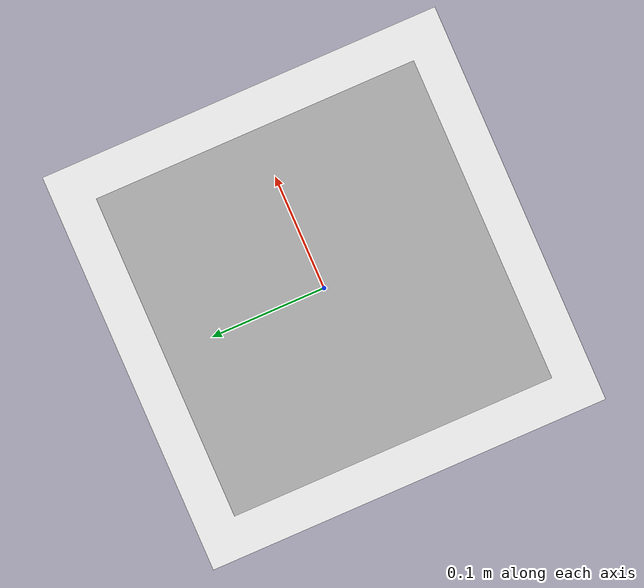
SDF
<?xml version="1.0" ?>
<sdf version="1.6">
  <model name="aruco_marker_3">
    <static>true</static>
    <link name="marker_link">

      <visual name="white_backing_board">
        <pose>0 0 -0.01 0 0 0</pose>
        <geometry>
          <box>
            <size>0.35 0.35 0.03</size>
          </box>
        </geometry>
        <material>
          <ambient>1 1 1 1</ambient>
          <diffuse>1 1 1 1</diffuse>
        </material>
      </visual>

      <visual name="aruco_front_surface">
        <pose>0 0 0.02 0 0 0</pose>
        <geometry>
          <plane>
            <normal>0 0 1</normal>
            <size>0.28 0.28</size>
          </plane>
        </geometry>
        <material>
          <script>
            <uri>model://aruco_marker_3/materials/scripts</uri>
            <uri>model://aruco_marker_3/materials/textures</uri>
            <name>Aruco/aruco_marker_3</name>
          </script>
        </material>
      </visual>

    </link>
  </model>
</sdf>
